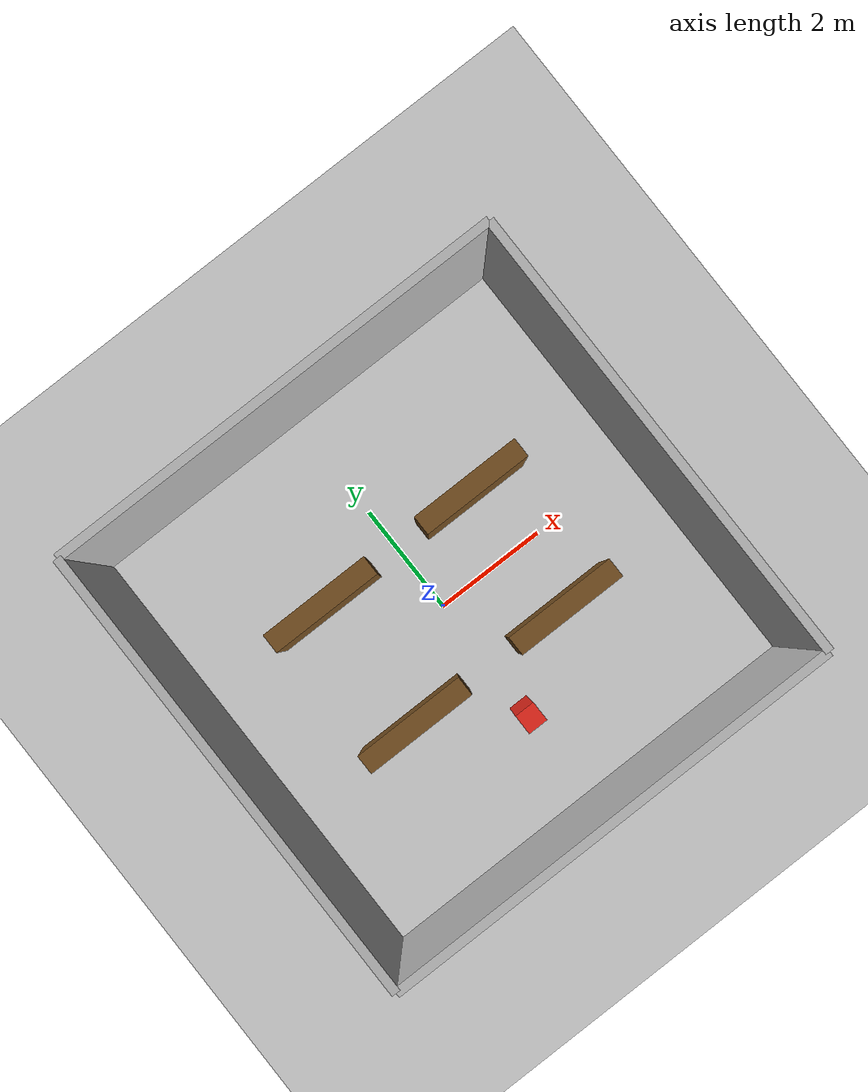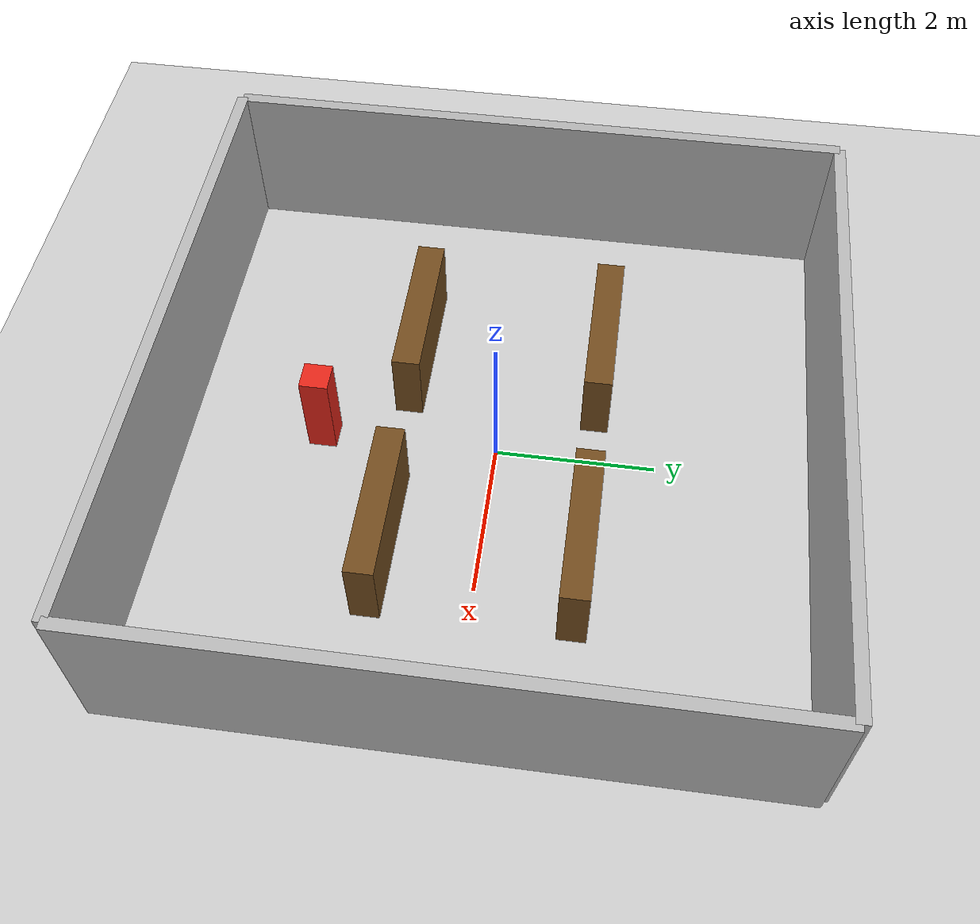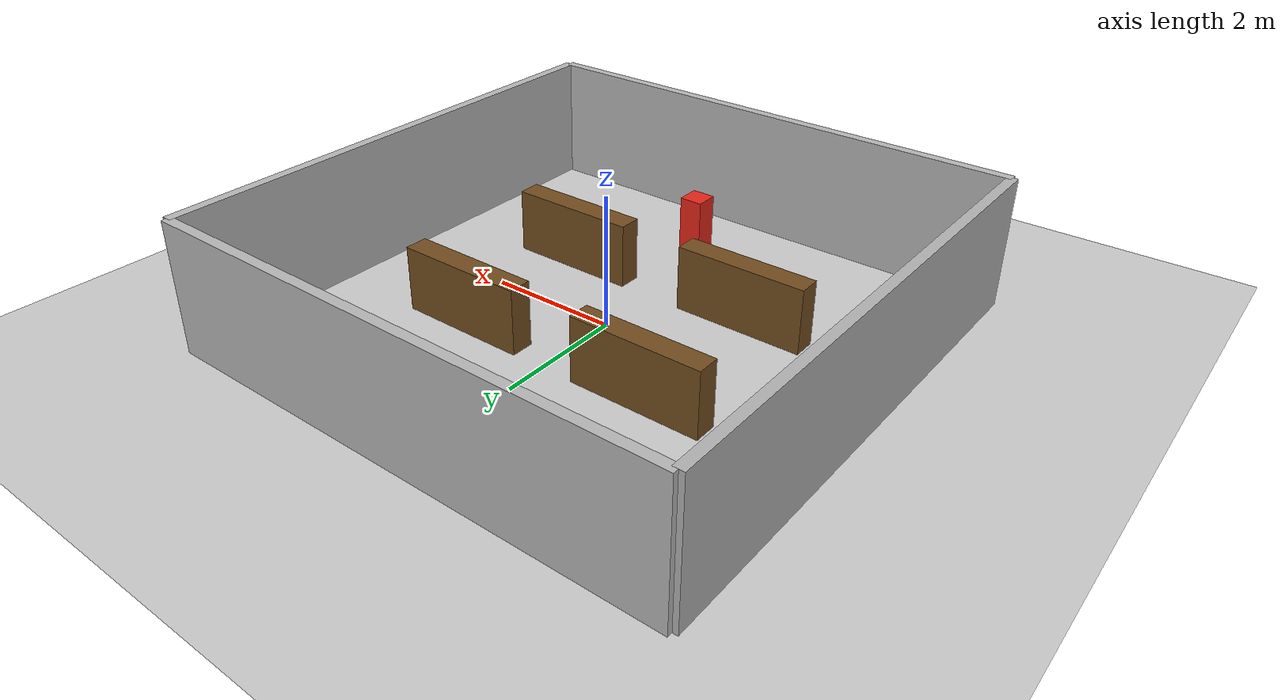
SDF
<?xml version="1.0" ?>
<sdf version="1.6">
  <world name="warehouse_world">

    <include>
      <uri>model://sun</uri>
    </include>

    <include>
      <uri>model://ground_plane</uri>
    </include>
        <plugin name="gazebo_ros_state" filename="libgazebo_ros_state.so">
      <ros>
        <namespace>/</namespace>
      </ros>
      <update_rate>10.0</update_rate>
    </plugin>
    <!-- Boundary walls -->
    <model name="back_wall">
      <static>true</static>
      <pose>-4 0 1 0 0 0</pose>
      <link name="link">
        <collision name="collision">
          <geometry>
            <box>
              <size>0.15 8 2</size>
            </box>
          </geometry>
        </collision>
        <visual name="visual">
          <geometry>
            <box>
              <size>0.15 8 2</size>
            </box>
          </geometry>
          <material>
            <ambient>0.7 0.7 0.7 1</ambient>
            <diffuse>0.7 0.7 0.7 1</diffuse>
          </material>
        </visual>
      </link>
    </model>

    <model name="front_wall">
      <static>true</static>
      <pose>4 0 1 0 0 0</pose>
      <link name="link">
        <collision name="collision">
          <geometry>
            <box>
              <size>0.15 8 2</size>
            </box>
          </geometry>
        </collision>
        <visual name="visual">
          <geometry>
            <box>
              <size>0.15 8 2</size>
            </box>
          </geometry>
        </visual>
      </link>
    </model>

    <model name="left_wall">
      <static>true</static>
      <pose>0 4 1 0 0 0</pose>
      <link name="link">
        <collision name="collision">
          <geometry>
            <box>
              <size>8 0.15 2</size>
            </box>
          </geometry>
        </collision>
        <visual name="visual">
          <geometry>
            <box>
              <size>8 0.15 2</size>
            </box>
          </geometry>
        </visual>
      </link>
    </model>

    <model name="right_wall">
      <static>true</static>
      <pose>0 -4 1 0 0 0</pose>
      <link name="link">
        <collision name="collision">
          <geometry>
            <box>
              <size>8 0.15 2</size>
            </box>
          </geometry>
        </collision>
        <visual name="visual">
          <geometry>
            <box>
              <size>8 0.15 2</size>
            </box>
          </geometry>
        </visual>
      </link>
    </model>

    <!-- Shelf rows -->
    <model name="shelf_row_1">
      <static>true</static>
      <pose>-1.5 1.2 0.5 0 0 0</pose>
      <link name="link">
        <collision name="collision">
          <geometry>
            <box>
              <size>2.0 0.35 1.0</size>
            </box>
          </geometry>
        </collision>
        <visual name="visual">
          <geometry>
            <box>
              <size>2.0 0.35 1.0</size>
            </box>
          </geometry>
          <material>
            <ambient>0.45 0.30 0.12 1</ambient>
            <diffuse>0.45 0.30 0.12 1</diffuse>
          </material>
        </visual>
      </link>
    </model>

    <model name="shelf_row_2">
      <static>true</static>
      <pose>1.5 1.2 0.5 0 0 0</pose>
      <link name="link">
        <collision name="collision">
          <geometry>
            <box>
              <size>2.0 0.35 1.0</size>
            </box>
          </geometry>
        </collision>
        <visual name="visual">
          <geometry>
            <box>
              <size>2.0 0.35 1.0</size>
            </box>
          </geometry>
          <material>
            <ambient>0.45 0.30 0.12 1</ambient>
            <diffuse>0.45 0.30 0.12 1</diffuse>
          </material>
        </visual>
      </link>
    </model>

    <model name="shelf_row_3">
      <static>true</static>
      <pose>-1.5 -1.2 0.5 0 0 0</pose>
      <link name="link">
        <collision name="collision">
          <geometry>
            <box>
              <size>2.0 0.35 1.0</size>
            </box>
          </geometry>
        </collision>
        <visual name="visual">
          <geometry>
            <box>
              <size>2.0 0.35 1.0</size>
            </box>
          </geometry>
          <material>
            <ambient>0.45 0.30 0.12 1</ambient>
            <diffuse>0.45 0.30 0.12 1</diffuse>
          </material>
        </visual>
      </link>
    </model>

    <model name="shelf_row_4">
      <static>true</static>
      <pose>1.5 -1.2 0.5 0 0 0</pose>
      <link name="link">
        <collision name="collision">
          <geometry>
            <box>
              <size>2.0 0.35 1.0</size>
            </box>
          </geometry>
        </collision>
        <visual name="visual">
          <geometry>
            <box>
              <size>2.0 0.35 1.0</size>
            </box>
          </geometry>
          <material>
            <ambient>0.45 0.30 0.12 1</ambient>
            <diffuse>0.45 0.30 0.12 1</diffuse>
          </material>
        </visual>
      </link>
    </model>
        <model name="moving_worker">
        <static>false</static>
      <pose>0 -2.2 0.6 0 0 0</pose>
      <link name="link">
       <gravity>false</gravity>
        <collision name="collision">
          <geometry>
            <box>
              <size>0.35 0.35 1.2</size>
            </box>
          </geometry>
        </collision>
        <visual name="visual">
          <geometry>
            <box>
              <size>0.35 0.35 1.2</size>
            </box>
          </geometry>
          <material>
            <ambient>0.9 0.15 0.1 1</ambient>
            <diffuse>0.9 0.15 0.1 1</diffuse>
          </material>
        </visual>
      </link>
    </model>

  </world>
</sdf>
